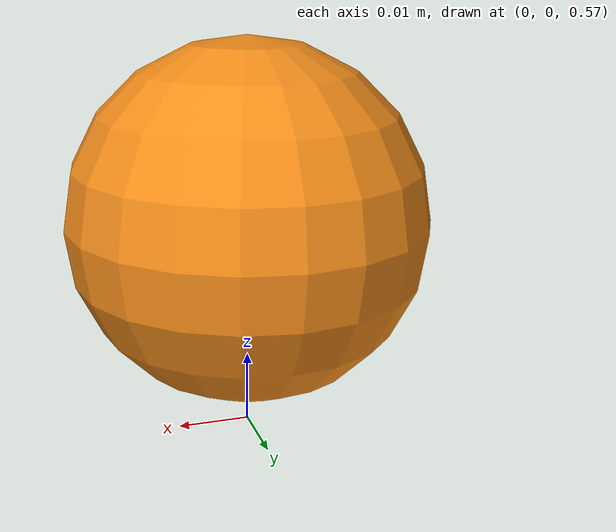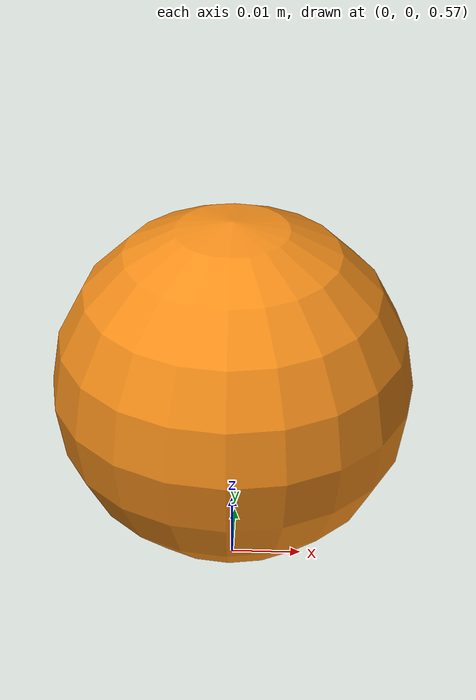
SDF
<?xml version="1.0" ?>
<sdf version="1.6">
  <model name="rolling_ball">
    <link name="ball_link">
      <pose>0 0 0.6 0 0 0</pose>
      <inertial>
        <mass>0.1</mass> <inertia>
          <ixx>0.000025</ixx> <ixy>0</ixy> <ixz>0</ixz>
          <iyy>0.000025</iyy> <iyz>0</iyz>
          <izz>0.000025</izz>
        </inertia>
      </inertial>
      <collision name="ball_collision">
        <geometry><sphere><radius>0.025</radius></sphere></geometry> <surface>
          <friction>
            <ode>
              <mu>1.0</mu>    <mu2>1.0</mu2>   </ode>
          </friction>
           <contact>
            <ode>
               <kp>1e4</kp> <kd>10</kd>    <min_depth>0.005</min_depth> <max_vel>0.05</max_vel>   </ode>
          </contact>
        </surface>
      </collision>
      <visual name="ball_visual">
        <geometry><sphere><radius>0.025</radius></sphere></geometry>
        <material><script><uri>file://media/materials/scripts/gazebo.material</uri><name>Gazebo/Orange</name></script></material>
      </visual>
    </link>
  </model>
</sdf>
